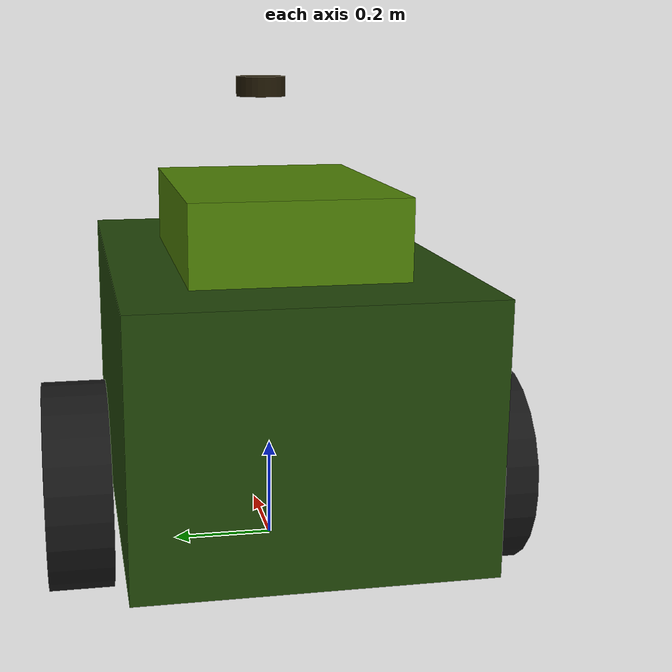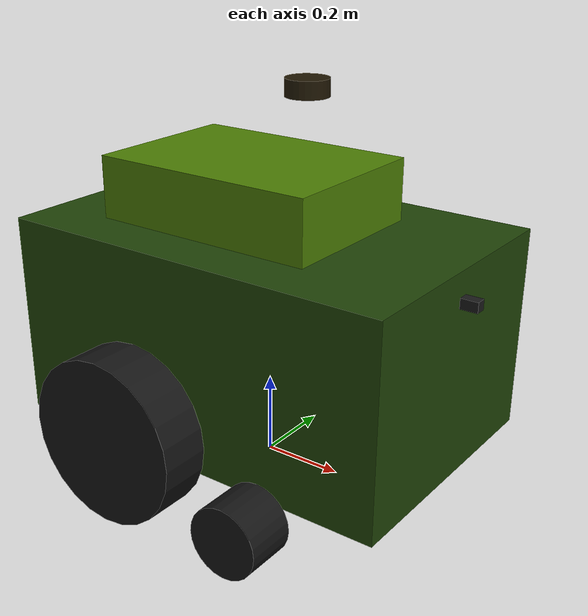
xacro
<?xml version="1.0"?>
<robot name="dcvg_robot" xmlns:xacro="http://www.ros.org/wiki/xacro">

  <!-- Base frame -->
  <xacro:property name="base_height"    value="0.08"/>     <!-- ground → base_link Z -->

  <!-- Base body -->
  <xacro:property name="mesh_scale"     value="0.1"/>      <!-- STL scale factor -->
  <xacro:property name="base_mesh_y"    value="0.105"/>    <!-- mesh centroid Y offset -->
  <xacro:property name="base_col_x"     value="1.0"/>      <!-- collision box size -->
  <xacro:property name="base_col_y"     value="0.65"/>
  <xacro:property name="base_col_z"     value="0.5"/>
  <xacro:property name="base_col_cy"    value="0.0"/>    <!-- collision centre Y -->
  <xacro:property name="base_col_cz"    value="0.2715"/>   <!-- collision centre Z -->
  <xacro:property name="base_mass"      value="10.0"/>

  <!-- Drive wheels -->
  <xacro:property name="wheel_radius"   value="0.2"/>
  <xacro:property name="wheel_length"   value="0.122"/>
  <xacro:property name="wheel_mass"     value="2.0"/>
  <xacro:property name="wheel_x"        value="-0.12705949983365117"/>
  <xacro:property name="wheel_z"        value="0.10252579476793128"/>
  <xacro:property name="right_wheel_y"  value="-0.4009616629101749"/>
  <xacro:property name="left_wheel_y"   value="0.4"/>

  <!-- Caster wheels -->
  <xacro:property name="caster_radius"  value="0.085"/>
  <xacro:property name="caster_length"  value="0.122"/>
  <xacro:property name="caster_mass"    value="0.5"/>
  <xacro:property name="caster_x"       value="0.22"/>
  <xacro:property name="caster_z"       value="-0.015"/>
  <xacro:property name="right_caster_y" value="-0.4009616629101749"/>
  <xacro:property name="left_caster_y"  value="0.4"/>

  <!-- Circuit box -->
  <xacro:property name="box_x_size"     value="0.566"/>
  <xacro:property name="box_y_size"     value="0.4"/>
  <xacro:property name="box_z_size"     value="0.204"/>
  <xacro:property name="box_col_z"      value="0.204"/>   <!-- collision only: keeps lidar 10 cm above top -->
  <xacro:property name="box_x"          value="-0.051186530340802394"/>
  <xacro:property name="box_z"          value="0.5696926006648109"/>
  <xacro:property name="box_mass"       value="2.0"/>

  <!-- Lidar -->
  <xacro:property name="lidar_radius"   value="0.05"/>
  <xacro:property name="lidar_length"   value="0.04"/>
  <xacro:property name="lidar_x"        value="0.09919157283119712"/>
  <xacro:property name="lidar_z"        value="0.8463953295940616"/>
  <xacro:property name="lidar_mass"     value="0.2"/>

  <!-- IMU -->
  <xacro:property name="imu_size"       value="0.1"/>
  <xacro:property name="imu_z"          value="0.32499184842320095"/>
  <xacro:property name="imu_mass"       value="0.05"/>

  <!-- Depth camera (D455: 124×26×25 mm, 87° H-FOV, depth 0.6-6 m) -->
  <xacro:property name="cam_x"          value="0.48"/>
  <xacro:property name="cam_z"          value="0.45"/>
  <xacro:property name="cam_size_x"     value="0.124"/>
  <xacro:property name="cam_size_y"     value="0.026"/>
  <xacro:property name="cam_size_z"     value="0.025"/>
  <xacro:property name="cam_mass"       value="0.1"/>

  <!-- ================================================================
       INERTIA MACROS
       ================================================================ -->

  <!-- Solid cylinder whose axis is along its local Z -->
  <xacro:macro name="cylinder_inertia" params="m r h">
    <inertial>
      <origin xyz="0 0 0" rpy="0 0 0"/>
      <mass value="${m}"/>
      <inertia
        ixx="${m * (3*r*r + h*h) / 12}"
        iyy="${m * (3*r*r + h*h) / 12}"
        izz="${m * r*r / 2}"
        ixy="0" ixz="0" iyz="0"/>
    </inertial>
  </xacro:macro>

  <!-- Solid box a × b × c -->
  <xacro:macro name="box_inertia" params="m a b c">
    <inertial>
      <origin xyz="0 0 0" rpy="0 0 0"/>
      <mass value="${m}"/>
      <inertia
        ixx="${m * (b*b + c*c) / 12}"
        iyy="${m * (a*a + c*c) / 12}"
        izz="${m * (a*a + b*b) / 12}"
        ixy="0" ixz="0" iyz="0"/>
    </inertial>
  </xacro:macro>

  <xacro:macro name="drive_wheel" params="name y">
    <joint name="base_link_to_${name}" type="continuous">
      <parent link="base_link"/>
      <child link="${name}"/>
      <origin xyz="${wheel_x} ${y} ${wheel_z}" rpy="${-pi/2} 0 0"/>
      <axis xyz="0 0 1"/>
    </joint>
    <link name="${name}">
      <visual>
        <origin xyz="0 0 0" rpy="0 0 0"/>
        <geometry>
          <cylinder radius="${wheel_radius}" length="${wheel_length}"/>
        </geometry>
        <material name="${name}-material">
          <color rgba="0.084 0.084 0.084 1"/>
        </material>
      </visual>
      <collision>
        <origin xyz="0 0 0" rpy="0 0 0"/>
        <geometry>
          <!-- 5 mm radial + 10 mm axial margin for collision -->
          <cylinder radius="${wheel_radius + 0.005}" length="${wheel_length + 0.01}"/>
        </geometry>
      </collision>
      <xacro:cylinder_inertia m="${wheel_mass}" r="${wheel_radius}" h="${wheel_length}"/>
    </link>
  </xacro:macro>

  <!-- ================================================================
       CASTER WHEEL MACRO
       ================================================================ -->

  <xacro:macro name="caster_wheel" params="name y">
    <joint name="base_link_to_${name}" type="continuous">
      <parent link="base_link"/>
      <child link="${name}"/>
      <origin xyz="${caster_x} ${y} ${caster_z}" rpy="${-pi/2} 0 0"/>
      <axis xyz="0 0 1"/>
      <dynamics damping="0.01" friction="0.1"/>
    </joint>
    <link name="${name}">
      <visual>
        <origin xyz="0 0 0" rpy="0 0 0"/>
        <geometry>
          <cylinder radius="${caster_radius}" length="${caster_length}"/>
        </geometry>
        <material name="${name}-material">
          <color rgba="0.084 0.084 0.084 1"/>
        </material>
      </visual>
      <collision>
        <origin xyz="0 0 0" rpy="0 0 0"/>
        <geometry>
          <cylinder radius="${caster_radius + 0.005}" length="${caster_length + 0.01}"/>
        </geometry>
      </collision>
      <xacro:cylinder_inertia m="${caster_mass}" r="${caster_radius}" h="${caster_length}"/>
    </link>
    <gazebo reference="${name}">
      <mu1>0.01</mu1>
      <mu2>0.01</mu2>
      <kp>1000000.0</kp>
      <kd>100.0</kd>
    </gazebo>
  </xacro:macro>

  <!-- ================================================================
       ROBOT STRUCTURE
       ================================================================ -->

  <link name="base_footprint"/>

  <joint name="base_joint" type="fixed">
    <parent link="base_footprint"/>
    <child link="base_link"/>
    <origin xyz="0 0 ${base_height}" rpy="0 0 0"/>
  </joint>

  <link name="base_link">
    <visual>
      <origin xyz="0 ${base_col_cy} ${base_col_cz}" rpy="0 0 0"/>
      <geometry>
        <box size="${base_col_x} ${base_col_y} ${base_col_z}"/>
      </geometry>
      <material name="base_link-material">
        <color rgba="0.127 0.270 0.033 1"/>
      </material>
    </visual>
    <collision>
      <origin xyz="0 ${base_col_cy} ${base_col_cz}" rpy="0 0 0"/>
      <geometry>
        <box size="${base_col_x} ${base_col_y} ${base_col_z}"/>
      </geometry>
    </collision>
    <inertial>
      <origin xyz="0 ${base_col_cy} ${base_col_cz}" rpy="0 0 0"/>
      <mass value="${base_mass}"/>
      <inertia
        ixx="${base_mass * (base_col_y*base_col_y + base_col_z*base_col_z) / 12}"
        iyy="${base_mass * (base_col_x*base_col_x + base_col_z*base_col_z) / 12}"
        izz="${base_mass * (base_col_x*base_col_x + base_col_y*base_col_y) / 12}"
        ixy="0" ixz="0" iyz="0"/>
    </inertial>
  </link>

  <!-- Drive wheels -->
  <xacro:drive_wheel name="right_wheel" y="${right_wheel_y}"/>
  <xacro:drive_wheel name="left_wheel"  y="${left_wheel_y}"/>

  <!-- Caster wheels -->
  <xacro:caster_wheel name="right_caster_front" y="${right_caster_y}"/>
  <xacro:caster_wheel name="left_caster_front"  y="${left_caster_y}"/>

  <!-- Circuit box -->
  <joint name="base_link_to_circuit_box" type="fixed">
    <parent link="base_link"/>
    <child link="circuit_box"/>
    <origin xyz="${box_x} 0 ${box_z}" rpy="0 0 0"/>
  </joint>
  <link name="circuit_box">
    <visual>
      <origin xyz="0 0 0" rpy="0 0 0"/>
      <geometry>
        <box size="${box_x_size} ${box_y_size} ${box_z_size}"/>
      </geometry>
      <material name="circuit_box-material">
        <color rgba="0.305 0.503 0.020 1"/>
      </material>
    </visual>
    <collision>
      <origin xyz="0 0 0" rpy="0 0 0"/>
      <geometry>
        <box size="${box_x_size} ${box_y_size} 0"/>
      </geometry>
    </collision>
    <xacro:box_inertia m="${box_mass}" a="${box_x_size}" b="${box_y_size}" c="${box_z_size}"/>
  </link>

  <!-- Lidar -->
  <joint name="base_link_to_lidar" type="fixed">
    <parent link="base_link"/>
    <child link="lidar"/>
    <origin xyz="${lidar_x} 0 ${lidar_z}" rpy="0 0 0"/>
  </joint>
  <link name="lidar">
    <visual>
      <origin xyz="0 0 0" rpy="0 0 0"/>
      <geometry>
        <cylinder radius="${lidar_radius}" length="${lidar_length}"/>
      </geometry>
      <material name="lidar-material">
        <color rgba="0.130 0.095 0.019 1"/>
      </material>
    </visual>
    <collision>
      <origin xyz="0 0 0" rpy="0 0 0"/>
      <geometry>
        <cylinder radius="${lidar_radius}" length="${lidar_length}"/>
      </geometry>
    </collision>
    <xacro:cylinder_inertia m="${lidar_mass}" r="${lidar_radius}" h="${lidar_length}"/>
  </link>

  <!-- Depth camera -->
  <joint name="base_link_to_camera" type="fixed">
    <parent link="base_link"/>
    <child link="camera_link"/>
    <origin xyz="${cam_x} 0 ${cam_z}" rpy="0 0 0"/>
  </joint>
  <link name="camera_link">
    <visual>
      <origin xyz="0 0 0" rpy="0 0 0"/>
      <geometry>
        <box size="${cam_size_x} ${cam_size_y} ${cam_size_z}"/>
      </geometry>
      <material name="camera-material">
        <color rgba="0.1 0.1 0.1 1"/>
      </material>
    </visual>
    <collision>
      <origin xyz="0 0 0" rpy="0 0 0"/>
      <geometry>
        <box size="${cam_size_x} ${cam_size_y} ${cam_size_z}"/>
      </geometry>
    </collision>
    <xacro:box_inertia m="${cam_mass}" a="${cam_size_x}" b="${cam_size_y}" c="${cam_size_z}"/>
  </link>

  <!-- Optical frame: ROS convention (Z forward, X right, Y down) -->
  <joint name="camera_optical_joint" type="fixed">
    <parent link="camera_link"/>
    <child link="camera_optical_frame"/>
    <origin xyz="0 0 0" rpy="${-pi/2} 0 ${-pi/2}"/>
  </joint>
  <link name="camera_optical_frame"/>

  <!-- GPS (placeholder — no visual) -->
  <joint name="gps_joint" type="fixed">
    <parent link="base_link"/>
    <child link="gps_link"/>
    <origin xyz="0 0 0" rpy="0 0 0"/>
  </joint>
  <link name="gps_link"/>

  <!-- IMU -->
  <joint name="base_link_to_imu" type="fixed">
    <parent link="base_link"/>
    <child link="imu"/>
    <origin xyz="0 0 ${imu_z}" rpy="0 0 0"/>
  </joint>
  <link name="imu">
    <visual>
      <origin xyz="0 0 0" rpy="0 0 0"/>
      <geometry>
        <box size="${imu_size} ${imu_size} ${imu_size}"/>
      </geometry>
      <material name="imu-material">
        <color rgba="1.0 0.0 0.631 1"/>
      </material>
    </visual>
    <collision>
      <origin xyz="0 0 0" rpy="0 0 0"/>
      <geometry>
        <box size="${imu_size} ${imu_size} ${imu_size}"/>
      </geometry>
    </collision>
    <xacro:box_inertia m="${imu_mass}" a="${imu_size}" b="${imu_size}" c="${imu_size}"/>
  </link>

</robot>
